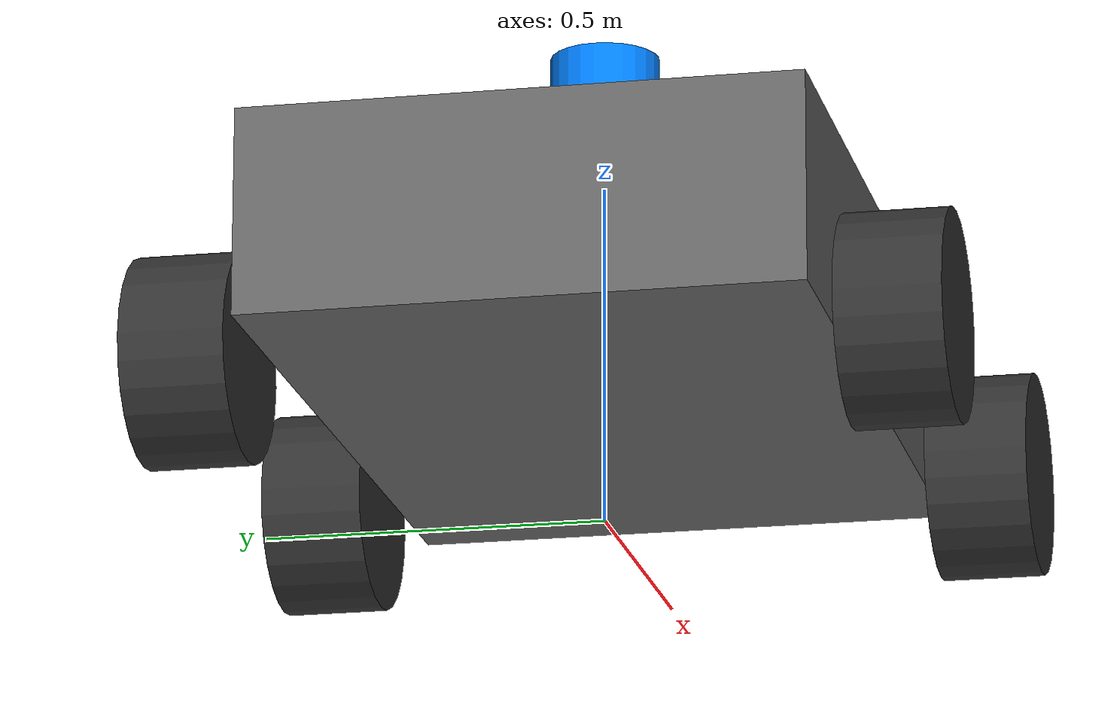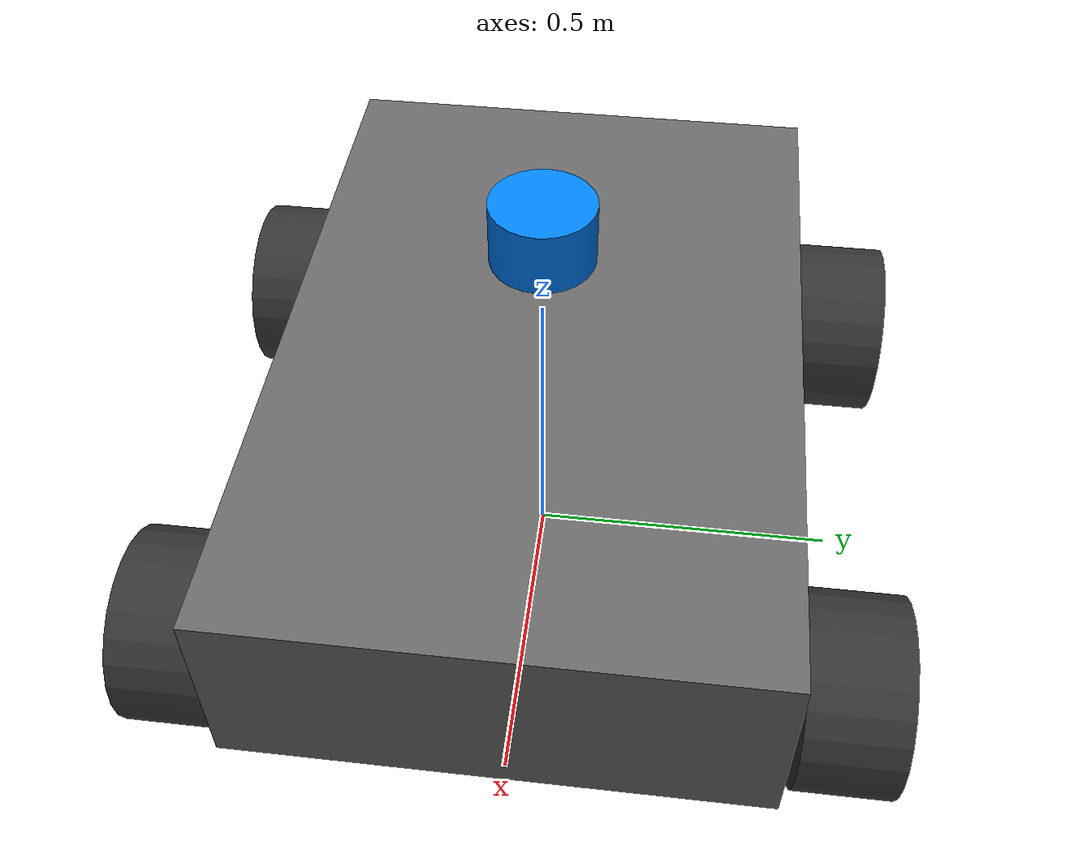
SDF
<?xml version="1.0" ?>
<sdf version="1.9">
  <model name="custom_rover">
    <static>false</static>
    <self_collide>false</self_collide>

    <!-- Chassis Link -->
    <link name="chassis">
      <pose>0 0 0.3 0 0 0</pose>

      <inertial>
        <mass>50.0</mass>
        <inertia>
          <ixx>2.0</ixx>
          <ixy>0</ixy>
          <ixz>0</ixz>
          <iyy>3.0</iyy>
          <iyz>0</iyz>
          <izz>4.0</izz>
        </inertia>
      </inertial>

      <collision name="collision">
        <geometry>
          <box>
            <size>1.2 0.8 0.3</size>
          </box>
        </geometry>
      </collision>

      <visual name="visual">
        <geometry>
          <box>
            <size>1.2 0.8 0.3</size>
          </box>
        </geometry>
        <material>
          <ambient>0.3 0.3 0.3 1</ambient>
          <diffuse>0.4 0.4 0.4 1</diffuse>
          <specular>0.5 0.5 0.5 1</specular>
        </material>
      </visual>
    </link>

    <!-- Front Left Wheel -->
    <link name="front_left_wheel">
      <pose>0.4 0.5 0.15 -1.5707 0 0</pose>
      <inertial>
        <mass>5.0</mass>
        <inertia>
          <ixx>0.05</ixx>
          <ixy>0</ixy>
          <ixz>0</ixz>
          <iyy>0.05</iyy>
          <iyz>0</iyz>
          <izz>0.05</izz>
        </inertia>
      </inertial>
      <collision name="collision">
        <geometry>
          <cylinder>
            <radius>0.15</radius>
            <length>0.15</length>
          </cylinder>
        </geometry>
        <surface>
          <friction>
            <ode>
              <mu>1.0</mu>
              <mu2>1.0</mu2>
            </ode>
          </friction>
        </surface>
      </collision>
      <visual name="visual">
        <geometry>
          <cylinder>
            <radius>0.15</radius>
            <length>0.15</length>
          </cylinder>
        </geometry>
        <material>
          <ambient>0.1 0.1 0.1 1</ambient>
          <diffuse>0.2 0.2 0.2 1</diffuse>
          <specular>0.1 0.1 0.1 1</specular>
        </material>
      </visual>
    </link>

    <!-- Front Right Wheel -->
    <link name="front_right_wheel">
      <pose>0.4 -0.5 0.15 -1.5707 0 0</pose>
      <inertial>
        <mass>5.0</mass>
        <inertia>
          <ixx>0.05</ixx>
          <ixy>0</ixy>
          <ixz>0</ixz>
          <iyy>0.05</iyy>
          <iyz>0</iyz>
          <izz>0.05</izz>
        </inertia>
      </inertial>
      <collision name="collision">
        <geometry>
          <cylinder>
            <radius>0.15</radius>
            <length>0.15</length>
          </cylinder>
        </geometry>
        <surface>
          <friction>
            <ode>
              <mu>1.0</mu>
              <mu2>1.0</mu2>
            </ode>
          </friction>
        </surface>
      </collision>
      <visual name="visual">
        <geometry>
          <cylinder>
            <radius>0.15</radius>
            <length>0.15</length>
          </cylinder>
        </geometry>
        <material>
          <ambient>0.1 0.1 0.1 1</ambient>
          <diffuse>0.2 0.2 0.2 1</diffuse>
          <specular>0.1 0.1 0.1 1</specular>
        </material>
      </visual>
    </link>

    <!-- Rear Left Wheel -->
    <link name="rear_left_wheel">
      <pose>-0.4 0.5 0.15 -1.5707 0 0</pose>
      <inertial>
        <mass>5.0</mass>
        <inertia>
          <ixx>0.05</ixx>
          <ixy>0</ixy>
          <ixz>0</ixz>
          <iyy>0.05</iyy>
          <iyz>0</iyz>
          <izz>0.05</izz>
        </inertia>
      </inertial>
      <collision name="collision">
        <geometry>
          <cylinder>
            <radius>0.15</radius>
            <length>0.15</length>
          </cylinder>
        </geometry>
        <surface>
          <friction>
            <ode>
              <mu>1.0</mu>
              <mu2>1.0</mu2>
            </ode>
          </friction>
        </surface>
      </collision>
      <visual name="visual">
        <geometry>
          <cylinder>
            <radius>0.15</radius>
            <length>0.15</length>
          </cylinder>
        </geometry>
        <material>
          <ambient>0.1 0.1 0.1 1</ambient>
          <diffuse>0.2 0.2 0.2 1</diffuse>
          <specular>0.1 0.1 0.1 1</specular>
        </material>
      </visual>
    </link>

    <!-- Rear Right Wheel -->
    <link name="rear_right_wheel">
      <pose>-0.4 -0.5 0.15 -1.5707 0 0</pose>
      <inertial>
        <mass>5.0</mass>
        <inertia>
          <ixx>0.05</ixx>
          <ixy>0</ixy>
          <ixz>0</ixz>
          <iyy>0.05</iyy>
          <iyz>0</iyz>
          <izz>0.05</izz>
        </inertia>
      </inertial>
      <collision name="collision">
        <geometry>
          <cylinder>
            <radius>0.15</radius>
            <length>0.15</length>
          </cylinder>
        </geometry>
        <surface>
          <friction>
            <ode>
              <mu>1.0</mu>
              <mu2>1.0</mu2>
            </ode>
          </friction>
        </surface>
      </collision>
      <visual name="visual">
        <geometry>
          <cylinder>
            <radius>0.15</radius>
            <length>0.15</length>
          </cylinder>
        </geometry>
        <material>
          <ambient>0.1 0.1 0.1 1</ambient>
          <diffuse>0.2 0.2 0.2 1</diffuse>
          <specular>0.1 0.1 0.1 1</specular>
        </material>
      </visual>
    </link>

    <!-- Lidar Link -->
    <link name="lidar_link">
      <pose>0 0 0.65 0 0 0</pose>
      <inertial>
        <mass>0.5</mass>
        <inertia>
          <ixx>0.001</ixx>
          <ixy>0</ixy>
          <ixz>0</ixz>
          <iyy>0.001</iyy>
          <iyz>0</iyz>
          <izz>0.001</izz>
        </inertia>
      </inertial>
      <collision name="collision">
        <geometry>
          <cylinder>
            <radius>0.08</radius>
            <length>0.1</length>
          </cylinder>
        </geometry>
      </collision>
      <visual name="visual">
        <geometry>
          <cylinder>
            <radius>0.08</radius>
            <length>0.1</length>
          </cylinder>
        </geometry>
        <material>
          <ambient>0 0 1 1</ambient>
          <diffuse>0 0.5 1 1</diffuse>
          <specular>0.8 0.8 0.8 1</specular>
        </material>
      </visual>

      <!-- Lidar Sensor -->
      <sensor name="lidar_sensor" type="ray">
        <pose>0 0 0.05 0 0 0</pose>
        <topic>lidar</topic>
        <update_rate>10</update_rate>
        <visualize>false</visualize>
        <always_on>true</always_on>
        <ray>
          <scan>
            <horizontal>
              <samples>640</samples>
              <resolution>1</resolution>
              <min_angle>-2.356</min_angle>
              <max_angle>2.356</max_angle>
            </horizontal>
          </scan>
          <range>
            <min>0.1</min>
            <max>30.0</max>
            <resolution>0.01</resolution>
          </range>
        </ray>
      </sensor>
    </link>

    <!-- Wheel Joints -->
    <joint name="front_left_wheel_joint" type="revolute">
      <parent>chassis</parent>
      <child>front_left_wheel</child>
      <axis>
        <xyz>0 0 1</xyz>
        <limit>
          <lower>-1e16</lower>
          <upper>1e16</upper>
        </limit>
      </axis>
    </joint>

    <joint name="front_right_wheel_joint" type="revolute">
      <parent>chassis</parent>
      <child>front_right_wheel</child>
      <axis>
        <xyz>0 0 1</xyz>
        <limit>
          <lower>-1e16</lower>
          <upper>1e16</upper>
        </limit>
      </axis>
    </joint>

    <joint name="rear_left_wheel_joint" type="revolute">
      <parent>chassis</parent>
      <child>rear_left_wheel</child>
      <axis>
        <xyz>0 0 1</xyz>
        <limit>
          <lower>-1e16</lower>
          <upper>1e16</upper>
        </limit>
      </axis>
    </joint>

    <joint name="rear_right_wheel_joint" type="revolute">
      <parent>chassis</parent>
      <child>rear_right_wheel</child>
      <axis>
        <xyz>0 0 1</xyz>
        <limit>
          <lower>-1e16</lower>
          <upper>1e16</upper>
        </limit>
      </axis>
    </joint>

    <joint name="lidar_joint" type="fixed">
      <parent>chassis</parent>
      <child>lidar_link</child>
    </joint>

    <!-- Differential Drive Plugin -->
    <plugin
      filename="ignition-gazebo-diff-drive-system"
      name="ignition::gazebo::systems::DiffDrive">
      <left_joint>front_left_wheel_joint</left_joint>
      <left_joint>rear_left_wheel_joint</left_joint>
      <right_joint>front_right_wheel_joint</right_joint>
      <right_joint>rear_right_wheel_joint</right_joint>
      <wheel_separation>1.0</wheel_separation>
      <wheel_radius>0.15</wheel_radius>
      <odom_publish_frequency>50</odom_publish_frequency>
      <topic>cmd_vel</topic>
      <odom_topic>odom</odom_topic>
      <tf_topic>tf</tf_topic>
      <frame_id>odom</frame_id>
      <child_frame_id>chassis</child_frame_id>
    </plugin>

  </model>
</sdf>
